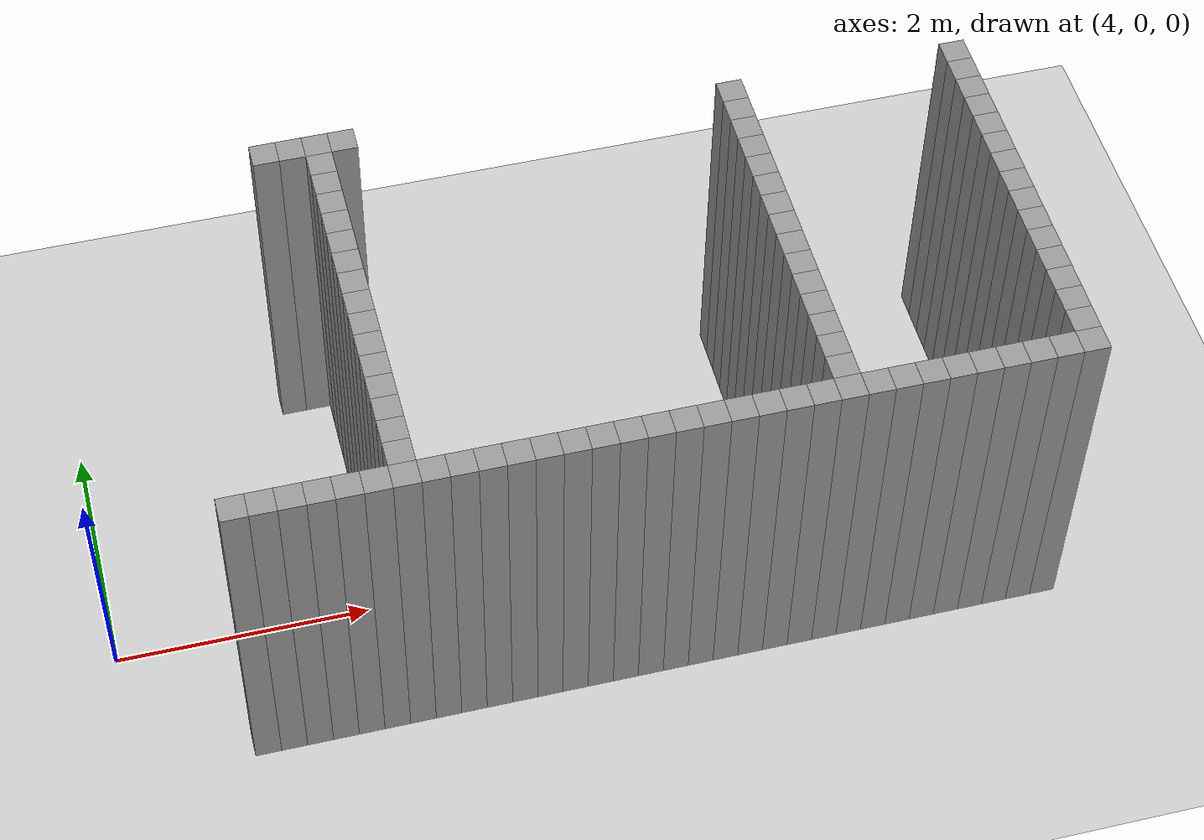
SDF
<sdf version="1.7">
 <world name="default">
  <model name="ground_plane">
   <static>1</static>
   <link name="link">
    <collision name="collision">
     <geometry><plane><normal>0 0 1</normal><size>100 100</size></plane></geometry>
     <surface>
      <contact><collide_bitmask>65535</collide_bitmask></contact>
      <friction><ode><mu>100</mu><mu2>50</mu2></ode></friction>
     </surface>
    </collision>
    <visual name="visual">
     <cast_shadows>0</cast_shadows>
     <geometry><plane><normal>0 0 1</normal><size>100 100</size></plane></geometry>
     <material>
      <script><uri>file://media/materials/scripts/gazebo.material</uri><name>Gazebo/Grey</name></script>
     </material>
    </visual>
   </link>
  </model>
  <model name="image49974">
   <pose>-1 -1 0 0 -0 0</pose>
   <link name="Wall_241">
    <collision name="Wall_241_Collision">
     <geometry><box><size>0.2 0.2 3</size></box></geometry>
     <pose>0 0 1.5 0 -0 0</pose>
    </collision>
    <visual name="Wall_241_Visual">
     <pose>0 0 1.5 0 -0 0</pose>
     <geometry><box><size>0.2 0.2 3</size></box></geometry>
     <material>
      <script><uri>file://media/materials/scripts/gazebo.material</uri><name>Gazebo/Grey</name></script>
      <ambient>1 1 1 1</ambient>
     </material>
     <meta><layer>0</layer></meta>
    </visual>
    <pose>6.0 0.0 0 0 -0 0</pose>
   </link>
   <link name="Wall_245">
    <collision name="Wall_245_Collision">
     <geometry><box><size>0.2 0.2 3</size></box></geometry>
     <pose>0 0 1.5 0 -0 0</pose>
    </collision>
    <visual name="Wall_245_Visual">
     <pose>0 0 1.5 0 -0 0</pose>
     <geometry><box><size>0.2 0.2 3</size></box></geometry>
     <material>
      <script><uri>file://media/materials/scripts/gazebo.material</uri><name>Gazebo/Grey</name></script>
      <ambient>1 1 1 1</ambient>
     </material>
     <meta><layer>0</layer></meta>
    </visual>
    <pose>6.2 0.0 0 0 -0 0</pose>
   </link>
   <link name="Wall_249">
    <collision name="Wall_249_Collision">
     <geometry><box><size>0.2 0.2 3</size></box></geometry>
     <pose>0 0 1.5 0 -0 0</pose>
    </collision>
    <visual name="Wall_249_Visual">
     <pose>0 0 1.5 0 -0 0</pose>
     <geometry><box><size>0.2 0.2 3</size></box></geometry>
     <material>
      <script><uri>file://media/materials/scripts/gazebo.material</uri><name>Gazebo/Grey</name></script>
      <ambient>1 1 1 1</ambient>
     </material>
     <meta><layer>0</layer></meta>
    </visual>
    <pose>6.4 0.0 0 0 -0 0</pose>
   </link>
   <link name="Wall_253">
    <collision name="Wall_253_Collision">
     <geometry><box><size>0.2 0.2 3</size></box></geometry>
     <pose>0 0 1.5 0 -0 0</pose>
    </collision>
    <visual name="Wall_253_Visual">
     <pose>0 0 1.5 0 -0 0</pose>
     <geometry><box><size>0.2 0.2 3</size></box></geometry>
     <material>
      <script><uri>file://media/materials/scripts/gazebo.material</uri><name>Gazebo/Grey</name></script>
      <ambient>1 1 1 1</ambient>
     </material>
     <meta><layer>0</layer></meta>
    </visual>
    <pose>6.6000000000000005 0.0 0 0 -0 0</pose>
   </link>
   <link name="Wall_256">
    <collision name="Wall_256_Collision">
     <geometry><box><size>0.2 0.2 3</size></box></geometry>
     <pose>0 0 1.5 0 -0 0</pose>
    </collision>
    <visual name="Wall_256_Visual">
     <pose>0 0 1.5 0 -0 0</pose>
     <geometry><box><size>0.2 0.2 3</size></box></geometry>
     <material>
      <script><uri>file://media/materials/scripts/gazebo.material</uri><name>Gazebo/Grey</name></script>
      <ambient>1 1 1 1</ambient>
     </material>
     <meta><layer>0</layer></meta>
    </visual>
    <pose>6.800000000000001 0.0 0 0 -0 0</pose>
   </link>
   <link name="Wall_257">
    <collision name="Wall_257_Collision">
     <geometry><box><size>0.2 0.2 3</size></box></geometry>
     <pose>0 0 1.5 0 -0 0</pose>
    </collision>
    <visual name="Wall_257_Visual">
     <pose>0 0 1.5 0 -0 0</pose>
     <geometry><box><size>0.2 0.2 3</size></box></geometry>
     <material>
      <script><uri>file://media/materials/scripts/gazebo.material</uri><name>Gazebo/Grey</name></script>
      <ambient>1 1 1 1</ambient>
     </material>
     <meta><layer>0</layer></meta>
    </visual>
    <pose>6.800000000000001 3.2 0 0 -0 0</pose>
   </link>
   <link name="Wall_260">
    <collision name="Wall_260_Collision">
     <geometry><box><size>0.2 0.2 3</size></box></geometry>
     <pose>0 0 1.5 0 -0 0</pose>
    </collision>
    <visual name="Wall_260_Visual">
     <pose>0 0 1.5 0 -0 0</pose>
     <geometry><box><size>0.2 0.2 3</size></box></geometry>
     <material>
      <script><uri>file://media/materials/scripts/gazebo.material</uri><name>Gazebo/Grey</name></script>
      <ambient>1 1 1 1</ambient>
     </material>
     <meta><layer>0</layer></meta>
    </visual>
    <pose>7.0 0.0 0 0 -0 0</pose>
   </link>
   <link name="Wall_261">
    <collision name="Wall_261_Collision">
     <geometry><box><size>0.2 0.2 3</size></box></geometry>
     <pose>0 0 1.5 0 -0 0</pose>
    </collision>
    <visual name="Wall_261_Visual">
     <pose>0 0 1.5 0 -0 0</pose>
     <geometry><box><size>0.2 0.2 3</size></box></geometry>
     <material>
      <script><uri>file://media/materials/scripts/gazebo.material</uri><name>Gazebo/Grey</name></script>
      <ambient>1 1 1 1</ambient>
     </material>
     <meta><layer>0</layer></meta>
    </visual>
    <pose>7.0 3.2 0 0 -0 0</pose>
   </link>
   <link name="Wall_264">
    <collision name="Wall_264_Collision">
     <geometry><box><size>0.2 0.2 3</size></box></geometry>
     <pose>0 0 1.5 0 -0 0</pose>
    </collision>
    <visual name="Wall_264_Visual">
     <pose>0 0 1.5 0 -0 0</pose>
     <geometry><box><size>0.2 0.2 3</size></box></geometry>
     <material>
      <script><uri>file://media/materials/scripts/gazebo.material</uri><name>Gazebo/Grey</name></script>
      <ambient>1 1 1 1</ambient>
     </material>
     <meta><layer>0</layer></meta>
    </visual>
    <pose>7.2 0.0 0 0 -0 0</pose>
   </link>
   <link name="Wall_265">
    <collision name="Wall_265_Collision">
     <geometry><box><size>0.2 0.2 3</size></box></geometry>
     <pose>0 0 1.5 0 -0 0</pose>
    </collision>
    <visual name="Wall_265_Visual">
     <pose>0 0 1.5 0 -0 0</pose>
     <geometry><box><size>0.2 0.2 3</size></box></geometry>
     <material>
      <script><uri>file://media/materials/scripts/gazebo.material</uri><name>Gazebo/Grey</name></script>
      <ambient>1 1 1 1</ambient>
     </material>
     <meta><layer>0</layer></meta>
    </visual>
    <pose>7.2 0.2 0 0 -0 0</pose>
   </link>
   <link name="Wall_266">
    <collision name="Wall_266_Collision">
     <geometry><box><size>0.2 0.2 3</size></box></geometry>
     <pose>0 0 1.5 0 -0 0</pose>
    </collision>
    <visual name="Wall_266_Visual">
     <pose>0 0 1.5 0 -0 0</pose>
     <geometry><box><size>0.2 0.2 3</size></box></geometry>
     <material>
      <script><uri>file://media/materials/scripts/gazebo.material</uri><name>Gazebo/Grey</name></script>
      <ambient>1 1 1 1</ambient>
     </material>
     <meta><layer>0</layer></meta>
    </visual>
    <pose>7.2 0.4 0 0 -0 0</pose>
   </link>
   <link name="Wall_267">
    <collision name="Wall_267_Collision">
     <geometry><box><size>0.2 0.2 3</size></box></geometry>
     <pose>0 0 1.5 0 -0 0</pose>
    </collision>
    <visual name="Wall_267_Visual">
     <pose>0 0 1.5 0 -0 0</pose>
     <geometry><box><size>0.2 0.2 3</size></box></geometry>
     <material>
      <script><uri>file://media/materials/scripts/gazebo.material</uri><name>Gazebo/Grey</name></script>
      <ambient>1 1 1 1</ambient>
     </material>
     <meta><layer>0</layer></meta>
    </visual>
    <pose>7.2 0.6000000000000001 0 0 -0 0</pose>
   </link>
   <link name="Wall_268">
    <collision name="Wall_268_Collision">
     <geometry><box><size>0.2 0.2 3</size></box></geometry>
     <pose>0 0 1.5 0 -0 0</pose>
    </collision>
    <visual name="Wall_268_Visual">
     <pose>0 0 1.5 0 -0 0</pose>
     <geometry><box><size>0.2 0.2 3</size></box></geometry>
     <material>
      <script><uri>file://media/materials/scripts/gazebo.material</uri><name>Gazebo/Grey</name></script>
      <ambient>1 1 1 1</ambient>
     </material>
     <meta><layer>0</layer></meta>
    </visual>
    <pose>7.2 0.8 0 0 -0 0</pose>
   </link>
   <link name="Wall_269">
    <collision name="Wall_269_Collision">
     <geometry><box><size>0.2 0.2 3</size></box></geometry>
     <pose>0 0 1.5 0 -0 0</pose>
    </collision>
    <visual name="Wall_269_Visual">
     <pose>0 0 1.5 0 -0 0</pose>
     <geometry><box><size>0.2 0.2 3</size></box></geometry>
     <material>
      <script><uri>file://media/materials/scripts/gazebo.material</uri><name>Gazebo/Grey</name></script>
      <ambient>1 1 1 1</ambient>
     </material>
     <meta><layer>0</layer></meta>
    </visual>
    <pose>7.2 1.0 0 0 -0 0</pose>
   </link>
   <link name="Wall_270">
    <collision name="Wall_270_Collision">
     <geometry><box><size>0.2 0.2 3</size></box></geometry>
     <pose>0 0 1.5 0 -0 0</pose>
    </collision>
    <visual name="Wall_270_Visual">
     <pose>0 0 1.5 0 -0 0</pose>
     <geometry><box><size>0.2 0.2 3</size></box></geometry>
     <material>
      <script><uri>file://media/materials/scripts/gazebo.material</uri><name>Gazebo/Grey</name></script>
      <ambient>1 1 1 1</ambient>
     </material>
     <meta><layer>0</layer></meta>
    </visual>
    <pose>7.2 1.2000000000000002 0 0 -0 0</pose>
   </link>
   <link name="Wall_271">
    <collision name="Wall_271_Collision">
     <geometry><box><size>0.2 0.2 3</size></box></geometry>
     <pose>0 0 1.5 0 -0 0</pose>
    </collision>
    <visual name="Wall_271_Visual">
     <pose>0 0 1.5 0 -0 0</pose>
     <geometry><box><size>0.2 0.2 3</size></box></geometry>
     <material>
      <script><uri>file://media/materials/scripts/gazebo.material</uri><name>Gazebo/Grey</name></script>
      <ambient>1 1 1 1</ambient>
     </material>
     <meta><layer>0</layer></meta>
    </visual>
    <pose>7.2 1.4000000000000001 0 0 -0 0</pose>
   </link>
   <link name="Wall_272">
    <collision name="Wall_272_Collision">
     <geometry><box><size>0.2 0.2 3</size></box></geometry>
     <pose>0 0 1.5 0 -0 0</pose>
    </collision>
    <visual name="Wall_272_Visual">
     <pose>0 0 1.5 0 -0 0</pose>
     <geometry><box><size>0.2 0.2 3</size></box></geometry>
     <material>
      <script><uri>file://media/materials/scripts/gazebo.material</uri><name>Gazebo/Grey</name></script>
      <ambient>1 1 1 1</ambient>
     </material>
     <meta><layer>0</layer></meta>
    </visual>
    <pose>7.2 1.6 0 0 -0 0</pose>
   </link>
   <link name="Wall_273">
    <collision name="Wall_273_Collision">
     <geometry><box><size>0.2 0.2 3</size></box></geometry>
     <pose>0 0 1.5 0 -0 0</pose>
    </collision>
    <visual name="Wall_273_Visual">
     <pose>0 0 1.5 0 -0 0</pose>
     <geometry><box><size>0.2 0.2 3</size></box></geometry>
     <material>
      <script><uri>file://media/materials/scripts/gazebo.material</uri><name>Gazebo/Grey</name></script>
      <ambient>1 1 1 1</ambient>
     </material>
     <meta><layer>0</layer></meta>
    </visual>
    <pose>7.2 1.8 0 0 -0 0</pose>
   </link>
   <link name="Wall_274">
    <collision name="Wall_274_Collision">
     <geometry><box><size>0.2 0.2 3</size></box></geometry>
     <pose>0 0 1.5 0 -0 0</pose>
    </collision>
    <visual name="Wall_274_Visual">
     <pose>0 0 1.5 0 -0 0</pose>
     <geometry><box><size>0.2 0.2 3</size></box></geometry>
     <material>
      <script><uri>file://media/materials/scripts/gazebo.material</uri><name>Gazebo/Grey</name></script>
      <ambient>1 1 1 1</ambient>
     </material>
     <meta><layer>0</layer></meta>
    </visual>
    <pose>7.2 2.0 0 0 -0 0</pose>
   </link>
   <link name="Wall_275">
    <collision name="Wall_275_Collision">
     <geometry><box><size>0.2 0.2 3</size></box></geometry>
     <pose>0 0 1.5 0 -0 0</pose>
    </collision>
    <visual name="Wall_275_Visual">
     <pose>0 0 1.5 0 -0 0</pose>
     <geometry><box><size>0.2 0.2 3</size></box></geometry>
     <material>
      <script><uri>file://media/materials/scripts/gazebo.material</uri><name>Gazebo/Grey</name></script>
      <ambient>1 1 1 1</ambient>
     </material>
     <meta><layer>0</layer></meta>
    </visual>
    <pose>7.2 2.2 0 0 -0 0</pose>
   </link>
   <link name="Wall_276">
    <collision name="Wall_276_Collision">
     <geometry><box><size>0.2 0.2 3</size></box></geometry>
     <pose>0 0 1.5 0 -0 0</pose>
    </collision>
    <visual name="Wall_276_Visual">
     <pose>0 0 1.5 0 -0 0</pose>
     <geometry><box><size>0.2 0.2 3</size></box></geometry>
     <material>
      <script><uri>file://media/materials/scripts/gazebo.material</uri><name>Gazebo/Grey</name></script>
      <ambient>1 1 1 1</ambient>
     </material>
     <meta><layer>0</layer></meta>
    </visual>
    <pose>7.2 2.4000000000000004 0 0 -0 0</pose>
   </link>
   <link name="Wall_277">
    <collision name="Wall_277_Collision">
     <geometry><box><size>0.2 0.2 3</size></box></geometry>
     <pose>0 0 1.5 0 -0 0</pose>
    </collision>
    <visual name="Wall_277_Visual">
     <pose>0 0 1.5 0 -0 0</pose>
     <geometry><box><size>0.2 0.2 3</size></box></geometry>
     <material>
      <script><uri>file://media/materials/scripts/gazebo.material</uri><name>Gazebo/Grey</name></script>
      <ambient>1 1 1 1</ambient>
     </material>
     <meta><layer>0</layer></meta>
    </visual>
    <pose>7.2 2.6 0 0 -0 0</pose>
   </link>
   <link name="Wall_278">
    <collision name="Wall_278_Collision">
     <geometry><box><size>0.2 0.2 3</size></box></geometry>
     <pose>0 0 1.5 0 -0 0</pose>
    </collision>
    <visual name="Wall_278_Visual">
     <pose>0 0 1.5 0 -0 0</pose>
     <geometry><box><size>0.2 0.2 3</size></box></geometry>
     <material>
      <script><uri>file://media/materials/scripts/gazebo.material</uri><name>Gazebo/Grey</name></script>
      <ambient>1 1 1 1</ambient>
     </material>
     <meta><layer>0</layer></meta>
    </visual>
    <pose>7.2 2.8000000000000003 0 0 -0 0</pose>
   </link>
   <link name="Wall_279">
    <collision name="Wall_279_Collision">
     <geometry><box><size>0.2 0.2 3</size></box></geometry>
     <pose>0 0 1.5 0 -0 0</pose>
    </collision>
    <visual name="Wall_279_Visual">
     <pose>0 0 1.5 0 -0 0</pose>
     <geometry><box><size>0.2 0.2 3</size></box></geometry>
     <material>
      <script><uri>file://media/materials/scripts/gazebo.material</uri><name>Gazebo/Grey</name></script>
      <ambient>1 1 1 1</ambient>
     </material>
     <meta><layer>0</layer></meta>
    </visual>
    <pose>7.2 3.0 0 0 -0 0</pose>
   </link>
   <link name="Wall_280">
    <collision name="Wall_280_Collision">
     <geometry><box><size>0.2 0.2 3</size></box></geometry>
     <pose>0 0 1.5 0 -0 0</pose>
    </collision>
    <visual name="Wall_280_Visual">
     <pose>0 0 1.5 0 -0 0</pose>
     <geometry><box><size>0.2 0.2 3</size></box></geometry>
     <material>
      <script><uri>file://media/materials/scripts/gazebo.material</uri><name>Gazebo/Grey</name></script>
      <ambient>1 1 1 1</ambient>
     </material>
     <meta><layer>0</layer></meta>
    </visual>
    <pose>7.2 3.2 0 0 -0 0</pose>
   </link>
   <link name="Wall_283">
    <collision name="Wall_283_Collision">
     <geometry><box><size>0.2 0.2 3</size></box></geometry>
     <pose>0 0 1.5 0 -0 0</pose>
    </collision>
    <visual name="Wall_283_Visual">
     <pose>0 0 1.5 0 -0 0</pose>
     <geometry><box><size>0.2 0.2 3</size></box></geometry>
     <material>
      <script><uri>file://media/materials/scripts/gazebo.material</uri><name>Gazebo/Grey</name></script>
      <ambient>1 1 1 1</ambient>
     </material>
     <meta><layer>0</layer></meta>
    </visual>
    <pose>7.4 0.0 0 0 -0 0</pose>
   </link>
   <link name="Wall_284">
    <collision name="Wall_284_Collision">
     <geometry><box><size>0.2 0.2 3</size></box></geometry>
     <pose>0 0 1.5 0 -0 0</pose>
    </collision>
    <visual name="Wall_284_Visual">
     <pose>0 0 1.5 0 -0 0</pose>
     <geometry><box><size>0.2 0.2 3</size></box></geometry>
     <material>
      <script><uri>file://media/materials/scripts/gazebo.material</uri><name>Gazebo/Grey</name></script>
      <ambient>1 1 1 1</ambient>
     </material>
     <meta><layer>0</layer></meta>
    </visual>
    <pose>7.4 3.2 0 0 -0 0</pose>
   </link>
   <link name="Wall_288">
    <collision name="Wall_288_Collision">
     <geometry><box><size>0.2 0.2 3</size></box></geometry>
     <pose>0 0 1.5 0 -0 0</pose>
    </collision>
    <visual name="Wall_288_Visual">
     <pose>0 0 1.5 0 -0 0</pose>
     <geometry><box><size>0.2 0.2 3</size></box></geometry>
     <material>
      <script><uri>file://media/materials/scripts/gazebo.material</uri><name>Gazebo/Grey</name></script>
      <ambient>1 1 1 1</ambient>
     </material>
     <meta><layer>0</layer></meta>
    </visual>
    <pose>7.6000000000000005 0.0 0 0 -0 0</pose>
   </link>
   <link name="Wall_293">
    <collision name="Wall_293_Collision">
     <geometry><box><size>0.2 0.2 3</size></box></geometry>
     <pose>0 0 1.5 0 -0 0</pose>
    </collision>
    <visual name="Wall_293_Visual">
     <pose>0 0 1.5 0 -0 0</pose>
     <geometry><box><size>0.2 0.2 3</size></box></geometry>
     <material>
      <script><uri>file://media/materials/scripts/gazebo.material</uri><name>Gazebo/Grey</name></script>
      <ambient>1 1 1 1</ambient>
     </material>
     <meta><layer>0</layer></meta>
    </visual>
    <pose>7.800000000000001 0.0 0 0 -0 0</pose>
   </link>
   <link name="Wall_309">
    <collision name="Wall_309_Collision">
     <geometry><box><size>0.2 0.2 3</size></box></geometry>
     <pose>0 0 1.5 0 -0 0</pose>
    </collision>
    <visual name="Wall_309_Visual">
     <pose>0 0 1.5 0 -0 0</pose>
     <geometry><box><size>0.2 0.2 3</size></box></geometry>
     <material>
      <script><uri>file://media/materials/scripts/gazebo.material</uri><name>Gazebo/Grey</name></script>
      <ambient>1 1 1 1</ambient>
     </material>
     <meta><layer>0</layer></meta>
    </visual>
    <pose>8.0 0.0 0 0 -0 0</pose>
   </link>
   <link name="Wall_312">
    <collision name="Wall_312_Collision">
     <geometry><box><size>0.2 0.2 3</size></box></geometry>
     <pose>0 0 1.5 0 -0 0</pose>
    </collision>
    <visual name="Wall_312_Visual">
     <pose>0 0 1.5 0 -0 0</pose>
     <geometry><box><size>0.2 0.2 3</size></box></geometry>
     <material>
      <script><uri>file://media/materials/scripts/gazebo.material</uri><name>Gazebo/Grey</name></script>
      <ambient>1 1 1 1</ambient>
     </material>
     <meta><layer>0</layer></meta>
    </visual>
    <pose>8.200000000000001 0.0 0 0 -0 0</pose>
   </link>
   <link name="Wall_327">
    <collision name="Wall_327_Collision">
     <geometry><box><size>0.2 0.2 3</size></box></geometry>
     <pose>0 0 1.5 0 -0 0</pose>
    </collision>
    <visual name="Wall_327_Visual">
     <pose>0 0 1.5 0 -0 0</pose>
     <geometry><box><size>0.2 0.2 3</size></box></geometry>
     <material>
      <script><uri>file://media/materials/scripts/gazebo.material</uri><name>Gazebo/Grey</name></script>
      <ambient>1 1 1 1</ambient>
     </material>
     <meta><layer>0</layer></meta>
    </visual>
    <pose>8.4 0.0 0 0 -0 0</pose>
   </link>
   <link name="Wall_330">
    <collision name="Wall_330_Collision">
     <geometry><box><size>0.2 0.2 3</size></box></geometry>
     <pose>0 0 1.5 0 -0 0</pose>
    </collision>
    <visual name="Wall_330_Visual">
     <pose>0 0 1.5 0 -0 0</pose>
     <geometry><box><size>0.2 0.2 3</size></box></geometry>
     <material>
      <script><uri>file://media/materials/scripts/gazebo.material</uri><name>Gazebo/Grey</name></script>
      <ambient>1 1 1 1</ambient>
     </material>
     <meta><layer>0</layer></meta>
    </visual>
    <pose>8.6 0.0 0 0 -0 0</pose>
   </link>
   <link name="Wall_332">
    <collision name="Wall_332_Collision">
     <geometry><box><size>0.2 0.2 3</size></box></geometry>
     <pose>0 0 1.5 0 -0 0</pose>
    </collision>
    <visual name="Wall_332_Visual">
     <pose>0 0 1.5 0 -0 0</pose>
     <geometry><box><size>0.2 0.2 3</size></box></geometry>
     <material>
      <script><uri>file://media/materials/scripts/gazebo.material</uri><name>Gazebo/Grey</name></script>
      <ambient>1 1 1 1</ambient>
     </material>
     <meta><layer>0</layer></meta>
    </visual>
    <pose>8.8 0.0 0 0 -0 0</pose>
   </link>
   <link name="Wall_334">
    <collision name="Wall_334_Collision">
     <geometry><box><size>0.2 0.2 3</size></box></geometry>
     <pose>0 0 1.5 0 -0 0</pose>
    </collision>
    <visual name="Wall_334_Visual">
     <pose>0 0 1.5 0 -0 0</pose>
     <geometry><box><size>0.2 0.2 3</size></box></geometry>
     <material>
      <script><uri>file://media/materials/scripts/gazebo.material</uri><name>Gazebo/Grey</name></script>
      <ambient>1 1 1 1</ambient>
     </material>
     <meta><layer>0</layer></meta>
    </visual>
    <pose>9.0 0.0 0 0 -0 0</pose>
   </link>
   <link name="Wall_336">
    <collision name="Wall_336_Collision">
     <geometry><box><size>0.2 0.2 3</size></box></geometry>
     <pose>0 0 1.5 0 -0 0</pose>
    </collision>
    <visual name="Wall_336_Visual">
     <pose>0 0 1.5 0 -0 0</pose>
     <geometry><box><size>0.2 0.2 3</size></box></geometry>
     <material>
      <script><uri>file://media/materials/scripts/gazebo.material</uri><name>Gazebo/Grey</name></script>
      <ambient>1 1 1 1</ambient>
     </material>
     <meta><layer>0</layer></meta>
    </visual>
    <pose>9.200000000000001 0.0 0 0 -0 0</pose>
   </link>
   <link name="Wall_338">
    <collision name="Wall_338_Collision">
     <geometry><box><size>0.2 0.2 3</size></box></geometry>
     <pose>0 0 1.5 0 -0 0</pose>
    </collision>
    <visual name="Wall_338_Visual">
     <pose>0 0 1.5 0 -0 0</pose>
     <geometry><box><size>0.2 0.2 3</size></box></geometry>
     <material>
      <script><uri>file://media/materials/scripts/gazebo.material</uri><name>Gazebo/Grey</name></script>
      <ambient>1 1 1 1</ambient>
     </material>
     <meta><layer>0</layer></meta>
    </visual>
    <pose>9.4 0.0 0 0 -0 0</pose>
   </link>
   <link name="Wall_340">
    <collision name="Wall_340_Collision">
     <geometry><box><size>0.2 0.2 3</size></box></geometry>
     <pose>0 0 1.5 0 -0 0</pose>
    </collision>
    <visual name="Wall_340_Visual">
     <pose>0 0 1.5 0 -0 0</pose>
     <geometry><box><size>0.2 0.2 3</size></box></geometry>
     <material>
      <script><uri>file://media/materials/scripts/gazebo.material</uri><name>Gazebo/Grey</name></script>
      <ambient>1 1 1 1</ambient>
     </material>
     <meta><layer>0</layer></meta>
    </visual>
    <pose>9.600000000000001 0.0 0 0 -0 0</pose>
   </link>
   <link name="Wall_342">
    <collision name="Wall_342_Collision">
     <geometry><box><size>0.2 0.2 3</size></box></geometry>
     <pose>0 0 1.5 0 -0 0</pose>
    </collision>
    <visual name="Wall_342_Visual">
     <pose>0 0 1.5 0 -0 0</pose>
     <geometry><box><size>0.2 0.2 3</size></box></geometry>
     <material>
      <script><uri>file://media/materials/scripts/gazebo.material</uri><name>Gazebo/Grey</name></script>
      <ambient>1 1 1 1</ambient>
     </material>
     <meta><layer>0</layer></meta>
    </visual>
    <pose>9.8 0.0 0 0 -0 0</pose>
   </link>
   <link name="Wall_345">
    <collision name="Wall_345_Collision">
     <geometry><box><size>0.2 0.2 3</size></box></geometry>
     <pose>0 0 1.5 0 -0 0</pose>
    </collision>
    <visual name="Wall_345_Visual">
     <pose>0 0 1.5 0 -0 0</pose>
     <geometry><box><size>0.2 0.2 3</size></box></geometry>
     <material>
      <script><uri>file://media/materials/scripts/gazebo.material</uri><name>Gazebo/Grey</name></script>
      <ambient>1 1 1 1</ambient>
     </material>
     <meta><layer>0</layer></meta>
    </visual>
    <pose>10.0 0.0 0 0 -0 0</pose>
   </link>
   <link name="Wall_354">
    <collision name="Wall_354_Collision">
     <geometry><box><size>0.2 0.2 3</size></box></geometry>
     <pose>0 0 1.5 0 -0 0</pose>
    </collision>
    <visual name="Wall_354_Visual">
     <pose>0 0 1.5 0 -0 0</pose>
     <geometry><box><size>0.2 0.2 3</size></box></geometry>
     <material>
      <script><uri>file://media/materials/scripts/gazebo.material</uri><name>Gazebo/Grey</name></script>
      <ambient>1 1 1 1</ambient>
     </material>
     <meta><layer>0</layer></meta>
    </visual>
    <pose>10.200000000000001 0.0 0 0 -0 0</pose>
   </link>
   <link name="Wall_360">
    <collision name="Wall_360_Collision">
     <geometry><box><size>0.2 0.2 3</size></box></geometry>
     <pose>0 0 1.5 0 -0 0</pose>
    </collision>
    <visual name="Wall_360_Visual">
     <pose>0 0 1.5 0 -0 0</pose>
     <geometry><box><size>0.2 0.2 3</size></box></geometry>
     <material>
      <script><uri>file://media/materials/scripts/gazebo.material</uri><name>Gazebo/Grey</name></script>
      <ambient>1 1 1 1</ambient>
     </material>
     <meta><layer>0</layer></meta>
    </visual>
    <pose>10.4 0.0 0 0 -0 0</pose>
   </link>
   <link name="Wall_361">
    <collision name="Wall_361_Collision">
     <geometry><box><size>0.2 0.2 3</size></box></geometry>
     <pose>0 0 1.5 0 -0 0</pose>
    </collision>
    <visual name="Wall_361_Visual">
     <pose>0 0 1.5 0 -0 0</pose>
     <geometry><box><size>0.2 0.2 3</size></box></geometry>
     <material>
      <script><uri>file://media/materials/scripts/gazebo.material</uri><name>Gazebo/Grey</name></script>
      <ambient>1 1 1 1</ambient>
     </material>
     <meta><layer>0</layer></meta>
    </visual>
    <pose>10.4 0.2 0 0 -0 0</pose>
   </link>
   <link name="Wall_362">
    <collision name="Wall_362_Collision">
     <geometry><box><size>0.2 0.2 3</size></box></geometry>
     <pose>0 0 1.5 0 -0 0</pose>
    </collision>
    <visual name="Wall_362_Visual">
     <pose>0 0 1.5 0 -0 0</pose>
     <geometry><box><size>0.2 0.2 3</size></box></geometry>
     <material>
      <script><uri>file://media/materials/scripts/gazebo.material</uri><name>Gazebo/Grey</name></script>
      <ambient>1 1 1 1</ambient>
     </material>
     <meta><layer>0</layer></meta>
    </visual>
    <pose>10.4 0.4 0 0 -0 0</pose>
   </link>
   <link name="Wall_363">
    <collision name="Wall_363_Collision">
     <geometry><box><size>0.2 0.2 3</size></box></geometry>
     <pose>0 0 1.5 0 -0 0</pose>
    </collision>
    <visual name="Wall_363_Visual">
     <pose>0 0 1.5 0 -0 0</pose>
     <geometry><box><size>0.2 0.2 3</size></box></geometry>
     <material>
      <script><uri>file://media/materials/scripts/gazebo.material</uri><name>Gazebo/Grey</name></script>
      <ambient>1 1 1 1</ambient>
     </material>
     <meta><layer>0</layer></meta>
    </visual>
    <pose>10.4 0.6000000000000001 0 0 -0 0</pose>
   </link>
   <link name="Wall_364">
    <collision name="Wall_364_Collision">
     <geometry><box><size>0.2 0.2 3</size></box></geometry>
     <pose>0 0 1.5 0 -0 0</pose>
    </collision>
    <visual name="Wall_364_Visual">
     <pose>0 0 1.5 0 -0 0</pose>
     <geometry><box><size>0.2 0.2 3</size></box></geometry>
     <material>
      <script><uri>file://media/materials/scripts/gazebo.material</uri><name>Gazebo/Grey</name></script>
      <ambient>1 1 1 1</ambient>
     </material>
     <meta><layer>0</layer></meta>
    </visual>
    <pose>10.4 0.8 0 0 -0 0</pose>
   </link>
   <link name="Wall_365">
    <collision name="Wall_365_Collision">
     <geometry><box><size>0.2 0.2 3</size></box></geometry>
     <pose>0 0 1.5 0 -0 0</pose>
    </collision>
    <visual name="Wall_365_Visual">
     <pose>0 0 1.5 0 -0 0</pose>
     <geometry><box><size>0.2 0.2 3</size></box></geometry>
     <material>
      <script><uri>file://media/materials/scripts/gazebo.material</uri><name>Gazebo/Grey</name></script>
      <ambient>1 1 1 1</ambient>
     </material>
     <meta><layer>0</layer></meta>
    </visual>
    <pose>10.4 1.0 0 0 -0 0</pose>
   </link>
   <link name="Wall_366">
    <collision name="Wall_366_Collision">
     <geometry><box><size>0.2 0.2 3</size></box></geometry>
     <pose>0 0 1.5 0 -0 0</pose>
    </collision>
    <visual name="Wall_366_Visual">
     <pose>0 0 1.5 0 -0 0</pose>
     <geometry><box><size>0.2 0.2 3</size></box></geometry>
     <material>
      <script><uri>file://media/materials/scripts/gazebo.material</uri><name>Gazebo/Grey</name></script>
      <ambient>1 1 1 1</ambient>
     </material>
     <meta><layer>0</layer></meta>
    </visual>
    <pose>10.4 1.2000000000000002 0 0 -0 0</pose>
   </link>
   <link name="Wall_367">
    <collision name="Wall_367_Collision">
     <geometry><box><size>0.2 0.2 3</size></box></geometry>
     <pose>0 0 1.5 0 -0 0</pose>
    </collision>
    <visual name="Wall_367_Visual">
     <pose>0 0 1.5 0 -0 0</pose>
     <geometry><box><size>0.2 0.2 3</size></box></geometry>
     <material>
      <script><uri>file://media/materials/scripts/gazebo.material</uri><name>Gazebo/Grey</name></script>
      <ambient>1 1 1 1</ambient>
     </material>
     <meta><layer>0</layer></meta>
    </visual>
    <pose>10.4 1.4000000000000001 0 0 -0 0</pose>
   </link>
   <link name="Wall_368">
    <collision name="Wall_368_Collision">
     <geometry><box><size>0.2 0.2 3</size></box></geometry>
     <pose>0 0 1.5 0 -0 0</pose>
    </collision>
    <visual name="Wall_368_Visual">
     <pose>0 0 1.5 0 -0 0</pose>
     <geometry><box><size>0.2 0.2 3</size></box></geometry>
     <material>
      <script><uri>file://media/materials/scripts/gazebo.material</uri><name>Gazebo/Grey</name></script>
      <ambient>1 1 1 1</ambient>
     </material>
     <meta><layer>0</layer></meta>
    </visual>
    <pose>10.4 1.6 0 0 -0 0</pose>
   </link>
   <link name="Wall_369">
    <collision name="Wall_369_Collision">
     <geometry><box><size>0.2 0.2 3</size></box></geometry>
     <pose>0 0 1.5 0 -0 0</pose>
    </collision>
    <visual name="Wall_369_Visual">
     <pose>0 0 1.5 0 -0 0</pose>
     <geometry><box><size>0.2 0.2 3</size></box></geometry>
     <material>
      <script><uri>file://media/materials/scripts/gazebo.material</uri><name>Gazebo/Grey</name></script>
      <ambient>1 1 1 1</ambient>
     </material>
     <meta><layer>0</layer></meta>
    </visual>
    <pose>10.4 1.8 0 0 -0 0</pose>
   </link>
   <link name="Wall_370">
    <collision name="Wall_370_Collision">
     <geometry><box><size>0.2 0.2 3</size></box></geometry>
     <pose>0 0 1.5 0 -0 0</pose>
    </collision>
    <visual name="Wall_370_Visual">
     <pose>0 0 1.5 0 -0 0</pose>
     <geometry><box><size>0.2 0.2 3</size></box></geometry>
     <material>
      <script><uri>file://media/materials/scripts/gazebo.material</uri><name>Gazebo/Grey</name></script>
      <ambient>1 1 1 1</ambient>
     </material>
     <meta><layer>0</layer></meta>
    </visual>
    <pose>10.4 2.0 0 0 -0 0</pose>
   </link>
   <link name="Wall_371">
    <collision name="Wall_371_Collision">
     <geometry><box><size>0.2 0.2 3</size></box></geometry>
     <pose>0 0 1.5 0 -0 0</pose>
    </collision>
    <visual name="Wall_371_Visual">
     <pose>0 0 1.5 0 -0 0</pose>
     <geometry><box><size>0.2 0.2 3</size></box></geometry>
     <material>
      <script><uri>file://media/materials/scripts/gazebo.material</uri><name>Gazebo/Grey</name></script>
      <ambient>1 1 1 1</ambient>
     </material>
     <meta><layer>0</layer></meta>
    </visual>
    <pose>10.4 2.2 0 0 -0 0</pose>
   </link>
   <link name="Wall_372">
    <collision name="Wall_372_Collision">
     <geometry><box><size>0.2 0.2 3</size></box></geometry>
     <pose>0 0 1.5 0 -0 0</pose>
    </collision>
    <visual name="Wall_372_Visual">
     <pose>0 0 1.5 0 -0 0</pose>
     <geometry><box><size>0.2 0.2 3</size></box></geometry>
     <material>
      <script><uri>file://media/materials/scripts/gazebo.material</uri><name>Gazebo/Grey</name></script>
      <ambient>1 1 1 1</ambient>
     </material>
     <meta><layer>0</layer></meta>
    </visual>
    <pose>10.4 2.4000000000000004 0 0 -0 0</pose>
   </link>
   <link name="Wall_373">
    <collision name="Wall_373_Collision">
     <geometry><box><size>0.2 0.2 3</size></box></geometry>
     <pose>0 0 1.5 0 -0 0</pose>
    </collision>
    <visual name="Wall_373_Visual">
     <pose>0 0 1.5 0 -0 0</pose>
     <geometry><box><size>0.2 0.2 3</size></box></geometry>
     <material>
      <script><uri>file://media/materials/scripts/gazebo.material</uri><name>Gazebo/Grey</name></script>
      <ambient>1 1 1 1</ambient>
     </material>
     <meta><layer>0</layer></meta>
    </visual>
    <pose>10.4 2.6 0 0 -0 0</pose>
   </link>
   <link name="Wall_374">
    <collision name="Wall_374_Collision">
     <geometry><box><size>0.2 0.2 3</size></box></geometry>
     <pose>0 0 1.5 0 -0 0</pose>
    </collision>
    <visual name="Wall_374_Visual">
     <pose>0 0 1.5 0 -0 0</pose>
     <geometry><box><size>0.2 0.2 3</size></box></geometry>
     <material>
      <script><uri>file://media/materials/scripts/gazebo.material</uri><name>Gazebo/Grey</name></script>
      <ambient>1 1 1 1</ambient>
     </material>
     <meta><layer>0</layer></meta>
    </visual>
    <pose>10.4 2.8000000000000003 0 0 -0 0</pose>
   </link>
   <link name="Wall_375">
    <collision name="Wall_375_Collision">
     <geometry><box><size>0.2 0.2 3</size></box></geometry>
     <pose>0 0 1.5 0 -0 0</pose>
    </collision>
    <visual name="Wall_375_Visual">
     <pose>0 0 1.5 0 -0 0</pose>
     <geometry><box><size>0.2 0.2 3</size></box></geometry>
     <material>
      <script><uri>file://media/materials/scripts/gazebo.material</uri><name>Gazebo/Grey</name></script>
      <ambient>1 1 1 1</ambient>
     </material>
     <meta><layer>0</layer></meta>
    </visual>
    <pose>10.4 3.0 0 0 -0 0</pose>
   </link>
   <link name="Wall_381">
    <collision name="Wall_381_Collision">
     <geometry><box><size>0.2 0.2 3</size></box></geometry>
     <pose>0 0 1.5 0 -0 0</pose>
    </collision>
    <visual name="Wall_381_Visual">
     <pose>0 0 1.5 0 -0 0</pose>
     <geometry><box><size>0.2 0.2 3</size></box></geometry>
     <material>
      <script><uri>file://media/materials/scripts/gazebo.material</uri><name>Gazebo/Grey</name></script>
      <ambient>1 1 1 1</ambient>
     </material>
     <meta><layer>0</layer></meta>
    </visual>
    <pose>10.600000000000001 0.0 0 0 -0 0</pose>
   </link>
   <link name="Wall_386">
    <collision name="Wall_386_Collision">
     <geometry><box><size>0.2 0.2 3</size></box></geometry>
     <pose>0 0 1.5 0 -0 0</pose>
    </collision>
    <visual name="Wall_386_Visual">
     <pose>0 0 1.5 0 -0 0</pose>
     <geometry><box><size>0.2 0.2 3</size></box></geometry>
     <material>
      <script><uri>file://media/materials/scripts/gazebo.material</uri><name>Gazebo/Grey</name></script>
      <ambient>1 1 1 1</ambient>
     </material>
     <meta><layer>0</layer></meta>
    </visual>
    <pose>10.8 0.0 0 0 -0 0</pose>
   </link>
   <link name="Wall_391">
    <collision name="Wall_391_Collision">
     <geometry><box><size>0.2 0.2 3</size></box></geometry>
     <pose>0 0 1.5 0 -0 0</pose>
    </collision>
    <visual name="Wall_391_Visual">
     <pose>0 0 1.5 0 -0 0</pose>
     <geometry><box><size>0.2 0.2 3</size></box></geometry>
     <material>
      <script><uri>file://media/materials/scripts/gazebo.material</uri><name>Gazebo/Grey</name></script>
      <ambient>1 1 1 1</ambient>
     </material>
     <meta><layer>0</layer></meta>
    </visual>
    <pose>11.0 0.0 0 0 -0 0</pose>
   </link>
   <link name="Wall_396">
    <collision name="Wall_396_Collision">
     <geometry><box><size>0.2 0.2 3</size></box></geometry>
     <pose>0 0 1.5 0 -0 0</pose>
    </collision>
    <visual name="Wall_396_Visual">
     <pose>0 0 1.5 0 -0 0</pose>
     <geometry><box><size>0.2 0.2 3</size></box></geometry>
     <material>
      <script><uri>file://media/materials/scripts/gazebo.material</uri><name>Gazebo/Grey</name></script>
      <ambient>1 1 1 1</ambient>
     </material>
     <meta><layer>0</layer></meta>
    </visual>
    <pose>11.200000000000001 0.0 0 0 -0 0</pose>
   </link>
   <link name="Wall_401">
    <collision name="Wall_401_Collision">
     <geometry><box><size>0.2 0.2 3</size></box></geometry>
     <pose>0 0 1.5 0 -0 0</pose>
    </collision>
    <visual name="Wall_401_Visual">
     <pose>0 0 1.5 0 -0 0</pose>
     <geometry><box><size>0.2 0.2 3</size></box></geometry>
     <material>
      <script><uri>file://media/materials/scripts/gazebo.material</uri><name>Gazebo/Grey</name></script>
      <ambient>1 1 1 1</ambient>
     </material>
     <meta><layer>0</layer></meta>
    </visual>
    <pose>11.4 0.0 0 0 -0 0</pose>
   </link>
   <link name="Wall_406">
    <collision name="Wall_406_Collision">
     <geometry><box><size>0.2 0.2 3</size></box></geometry>
     <pose>0 0 1.5 0 -0 0</pose>
    </collision>
    <visual name="Wall_406_Visual">
     <pose>0 0 1.5 0 -0 0</pose>
     <geometry><box><size>0.2 0.2 3</size></box></geometry>
     <material>
      <script><uri>file://media/materials/scripts/gazebo.material</uri><name>Gazebo/Grey</name></script>
      <ambient>1 1 1 1</ambient>
     </material>
     <meta><layer>0</layer></meta>
    </visual>
    <pose>11.600000000000001 0.0 0 0 -0 0</pose>
   </link>
   <link name="Wall_411">
    <collision name="Wall_411_Collision">
     <geometry><box><size>0.2 0.2 3</size></box></geometry>
     <pose>0 0 1.5 0 -0 0</pose>
    </collision>
    <visual name="Wall_411_Visual">
     <pose>0 0 1.5 0 -0 0</pose>
     <geometry><box><size>0.2 0.2 3</size></box></geometry>
     <material>
      <script><uri>file://media/materials/scripts/gazebo.material</uri><name>Gazebo/Grey</name></script>
      <ambient>1 1 1 1</ambient>
     </material>
     <meta><layer>0</layer></meta>
    </visual>
    <pose>11.8 0.0 0 0 -0 0</pose>
   </link>
   <link name="Wall_416">
    <collision name="Wall_416_Collision">
     <geometry><box><size>0.2 0.2 3</size></box></geometry>
     <pose>0 0 1.5 0 -0 0</pose>
    </collision>
    <visual name="Wall_416_Visual">
     <pose>0 0 1.5 0 -0 0</pose>
     <geometry><box><size>0.2 0.2 3</size></box></geometry>
     <material>
      <script><uri>file://media/materials/scripts/gazebo.material</uri><name>Gazebo/Grey</name></script>
      <ambient>1 1 1 1</ambient>
     </material>
     <meta><layer>0</layer></meta>
    </visual>
    <pose>12.0 0.0 0 0 -0 0</pose>
   </link>
   <link name="Wall_421">
    <collision name="Wall_421_Collision">
     <geometry><box><size>0.2 0.2 3</size></box></geometry>
     <pose>0 0 1.5 0 -0 0</pose>
    </collision>
    <visual name="Wall_421_Visual">
     <pose>0 0 1.5 0 -0 0</pose>
     <geometry><box><size>0.2 0.2 3</size></box></geometry>
     <material>
      <script><uri>file://media/materials/scripts/gazebo.material</uri><name>Gazebo/Grey</name></script>
      <ambient>1 1 1 1</ambient>
     </material>
     <meta><layer>0</layer></meta>
    </visual>
    <pose>12.200000000000001 0.0 0 0 -0 0</pose>
   </link>
   <link name="Wall_422">
    <collision name="Wall_422_Collision">
     <geometry><box><size>0.2 0.2 3</size></box></geometry>
     <pose>0 0 1.5 0 -0 0</pose>
    </collision>
    <visual name="Wall_422_Visual">
     <pose>0 0 1.5 0 -0 0</pose>
     <geometry><box><size>0.2 0.2 3</size></box></geometry>
     <material>
      <script><uri>file://media/materials/scripts/gazebo.material</uri><name>Gazebo/Grey</name></script>
      <ambient>1 1 1 1</ambient>
     </material>
     <meta><layer>0</layer></meta>
    </visual>
    <pose>12.200000000000001 0.2 0 0 -0 0</pose>
   </link>
   <link name="Wall_423">
    <collision name="Wall_423_Collision">
     <geometry><box><size>0.2 0.2 3</size></box></geometry>
     <pose>0 0 1.5 0 -0 0</pose>
    </collision>
    <visual name="Wall_423_Visual">
     <pose>0 0 1.5 0 -0 0</pose>
     <geometry><box><size>0.2 0.2 3</size></box></geometry>
     <material>
      <script><uri>file://media/materials/scripts/gazebo.material</uri><name>Gazebo/Grey</name></script>
      <ambient>1 1 1 1</ambient>
     </material>
     <meta><layer>0</layer></meta>
    </visual>
    <pose>12.200000000000001 0.4 0 0 -0 0</pose>
   </link>
   <link name="Wall_424">
    <collision name="Wall_424_Collision">
     <geometry><box><size>0.2 0.2 3</size></box></geometry>
     <pose>0 0 1.5 0 -0 0</pose>
    </collision>
    <visual name="Wall_424_Visual">
     <pose>0 0 1.5 0 -0 0</pose>
     <geometry><box><size>0.2 0.2 3</size></box></geometry>
     <material>
      <script><uri>file://media/materials/scripts/gazebo.material</uri><name>Gazebo/Grey</name></script>
      <ambient>1 1 1 1</ambient>
     </material>
     <meta><layer>0</layer></meta>
    </visual>
    <pose>12.200000000000001 0.6000000000000001 0 0 -0 0</pose>
   </link>
   <link name="Wall_425">
    <collision name="Wall_425_Collision">
     <geometry><box><size>0.2 0.2 3</size></box></geometry>
     <pose>0 0 1.5 0 -0 0</pose>
    </collision>
    <visual name="Wall_425_Visual">
     <pose>0 0 1.5 0 -0 0</pose>
     <geometry><box><size>0.2 0.2 3</size></box></geometry>
     <material>
      <script><uri>file://media/materials/scripts/gazebo.material</uri><name>Gazebo/Grey</name></script>
      <ambient>1 1 1 1</ambient>
     </material>
     <meta><layer>0</layer></meta>
    </visual>
    <pose>12.200000000000001 0.8 0 0 -0 0</pose>
   </link>
   <link name="Wall_426">
    <collision name="Wall_426_Collision">
     <geometry><box><size>0.2 0.2 3</size></box></geometry>
     <pose>0 0 1.5 0 -0 0</pose>
    </collision>
    <visual name="Wall_426_Visual">
     <pose>0 0 1.5 0 -0 0</pose>
     <geometry><box><size>0.2 0.2 3</size></box></geometry>
     <material>
      <script><uri>file://media/materials/scripts/gazebo.material</uri><name>Gazebo/Grey</name></script>
      <ambient>1 1 1 1</ambient>
     </material>
     <meta><layer>0</layer></meta>
    </visual>
    <pose>12.200000000000001 1.0 0 0 -0 0</pose>
   </link>
   <link name="Wall_427">
    <collision name="Wall_427_Collision">
     <geometry><box><size>0.2 0.2 3</size></box></geometry>
     <pose>0 0 1.5 0 -0 0</pose>
    </collision>
    <visual name="Wall_427_Visual">
     <pose>0 0 1.5 0 -0 0</pose>
     <geometry><box><size>0.2 0.2 3</size></box></geometry>
     <material>
      <script><uri>file://media/materials/scripts/gazebo.material</uri><name>Gazebo/Grey</name></script>
      <ambient>1 1 1 1</ambient>
     </material>
     <meta><layer>0</layer></meta>
    </visual>
    <pose>12.200000000000001 1.2000000000000002 0 0 -0 0</pose>
   </link>
   <link name="Wall_428">
    <collision name="Wall_428_Collision">
     <geometry><box><size>0.2 0.2 3</size></box></geometry>
     <pose>0 0 1.5 0 -0 0</pose>
    </collision>
    <visual name="Wall_428_Visual">
     <pose>0 0 1.5 0 -0 0</pose>
     <geometry><box><size>0.2 0.2 3</size></box></geometry>
     <material>
      <script><uri>file://media/materials/scripts/gazebo.material</uri><name>Gazebo/Grey</name></script>
      <ambient>1 1 1 1</ambient>
     </material>
     <meta><layer>0</layer></meta>
    </visual>
    <pose>12.200000000000001 1.4000000000000001 0 0 -0 0</pose>
   </link>
   <link name="Wall_429">
    <collision name="Wall_429_Collision">
     <geometry><box><size>0.2 0.2 3</size></box></geometry>
     <pose>0 0 1.5 0 -0 0</pose>
    </collision>
    <visual name="Wall_429_Visual">
     <pose>0 0 1.5 0 -0 0</pose>
     <geometry><box><size>0.2 0.2 3</size></box></geometry>
     <material>
      <script><uri>file://media/materials/scripts/gazebo.material</uri><name>Gazebo/Grey</name></script>
      <ambient>1 1 1 1</ambient>
     </material>
     <meta><layer>0</layer></meta>
    </visual>
    <pose>12.200000000000001 1.6 0 0 -0 0</pose>
   </link>
   <link name="Wall_430">
    <collision name="Wall_430_Collision">
     <geometry><box><size>0.2 0.2 3</size></box></geometry>
     <pose>0 0 1.5 0 -0 0</pose>
    </collision>
    <visual name="Wall_430_Visual">
     <pose>0 0 1.5 0 -0 0</pose>
     <geometry><box><size>0.2 0.2 3</size></box></geometry>
     <material>
      <script><uri>file://media/materials/scripts/gazebo.material</uri><name>Gazebo/Grey</name></script>
      <ambient>1 1 1 1</ambient>
     </material>
     <meta><layer>0</layer></meta>
    </visual>
    <pose>12.200000000000001 1.8 0 0 -0 0</pose>
   </link>
   <link name="Wall_431">
    <collision name="Wall_431_Collision">
     <geometry><box><size>0.2 0.2 3</size></box></geometry>
     <pose>0 0 1.5 0 -0 0</pose>
    </collision>
    <visual name="Wall_431_Visual">
     <pose>0 0 1.5 0 -0 0</pose>
     <geometry><box><size>0.2 0.2 3</size></box></geometry>
     <material>
      <script><uri>file://media/materials/scripts/gazebo.material</uri><name>Gazebo/Grey</name></script>
      <ambient>1 1 1 1</ambient>
     </material>
     <meta><layer>0</layer></meta>
    </visual>
    <pose>12.200000000000001 2.0 0 0 -0 0</pose>
   </link>
   <link name="Wall_432">
    <collision name="Wall_432_Collision">
     <geometry><box><size>0.2 0.2 3</size></box></geometry>
     <pose>0 0 1.5 0 -0 0</pose>
    </collision>
    <visual name="Wall_432_Visual">
     <pose>0 0 1.5 0 -0 0</pose>
     <geometry><box><size>0.2 0.2 3</size></box></geometry>
     <material>
      <script><uri>file://media/materials/scripts/gazebo.material</uri><name>Gazebo/Grey</name></script>
      <ambient>1 1 1 1</ambient>
     </material>
     <meta><layer>0</layer></meta>
    </visual>
    <pose>12.200000000000001 2.2 0 0 -0 0</pose>
   </link>
   <link name="Wall_433">
    <collision name="Wall_433_Collision">
     <geometry><box><size>0.2 0.2 3</size></box></geometry>
     <pose>0 0 1.5 0 -0 0</pose>
    </collision>
    <visual name="Wall_433_Visual">
     <pose>0 0 1.5 0 -0 0</pose>
     <geometry><box><size>0.2 0.2 3</size></box></geometry>
     <material>
      <script><uri>file://media/materials/scripts/gazebo.material</uri><name>Gazebo/Grey</name></script>
      <ambient>1 1 1 1</ambient>
     </material>
     <meta><layer>0</layer></meta>
    </visual>
    <pose>12.200000000000001 2.4000000000000004 0 0 -0 0</pose>
   </link>
   <link name="Wall_434">
    <collision name="Wall_434_Collision">
     <geometry><box><size>0.2 0.2 3</size></box></geometry>
     <pose>0 0 1.5 0 -0 0</pose>
    </collision>
    <visual name="Wall_434_Visual">
     <pose>0 0 1.5 0 -0 0</pose>
     <geometry><box><size>0.2 0.2 3</size></box></geometry>
     <material>
      <script><uri>file://media/materials/scripts/gazebo.material</uri><name>Gazebo/Grey</name></script>
      <ambient>1 1 1 1</ambient>
     </material>
     <meta><layer>0</layer></meta>
    </visual>
    <pose>12.200000000000001 2.6 0 0 -0 0</pose>
   </link>
   <link name="Wall_435">
    <collision name="Wall_435_Collision">
     <geometry><box><size>0.2 0.2 3</size></box></geometry>
     <pose>0 0 1.5 0 -0 0</pose>
    </collision>
    <visual name="Wall_435_Visual">
     <pose>0 0 1.5 0 -0 0</pose>
     <geometry><box><size>0.2 0.2 3</size></box></geometry>
     <material>
      <script><uri>file://media/materials/scripts/gazebo.material</uri><name>Gazebo/Grey</name></script>
      <ambient>1 1 1 1</ambient>
     </material>
     <meta><layer>0</layer></meta>
    </visual>
    <pose>12.200000000000001 2.8000000000000003 0 0 -0 0</pose>
   </link>
   <link name="Wall_436">
    <collision name="Wall_436_Collision">
     <geometry><box><size>0.2 0.2 3</size></box></geometry>
     <pose>0 0 1.5 0 -0 0</pose>
    </collision>
    <visual name="Wall_436_Visual">
     <pose>0 0 1.5 0 -0 0</pose>
     <geometry><box><size>0.2 0.2 3</size></box></geometry>
     <material>
      <script><uri>file://media/materials/scripts/gazebo.material</uri><name>Gazebo/Grey</name></script>
      <ambient>1 1 1 1</ambient>
     </material>
     <meta><layer>0</layer></meta>
    </visual>
    <pose>12.200000000000001 3.0 0 0 -0 0</pose>
   </link>
   <static>1</static>
  </model>
 </world>
</sdf>
